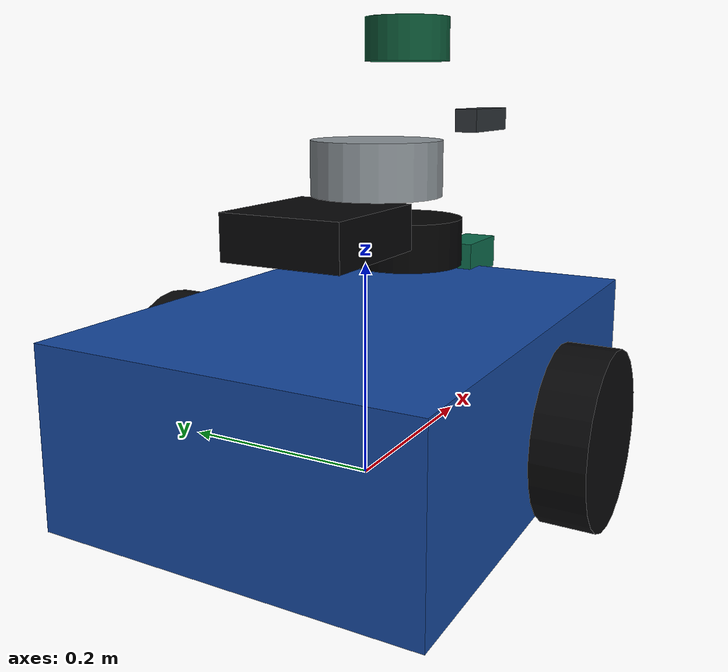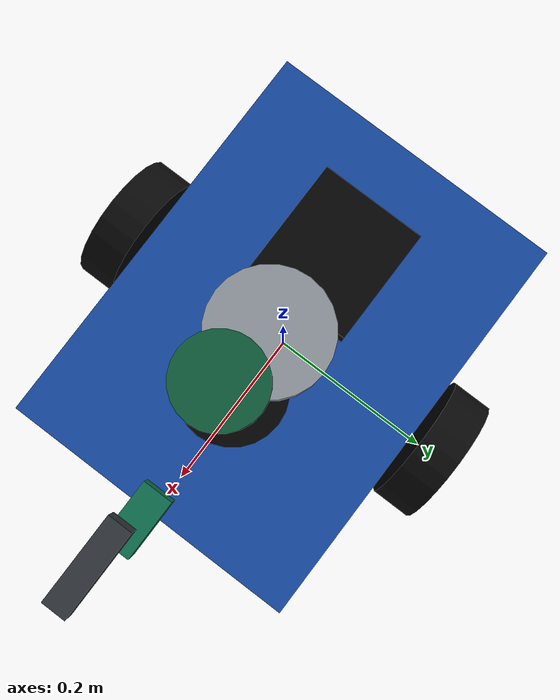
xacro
<?xml version="1.0"?>
<robot xmlns:xacro="http://www.ros.org/wiki/xacro" name="service_robot">
  <xacro:arg name="use_gazebo" default="true"/>

  <xacro:property name="base_length" value="0.46"/>
  <xacro:property name="base_width" value="0.34"/>
  <xacro:property name="base_height" value="0.16"/>
  <xacro:property name="wheel_radius" value="0.075"/>
  <xacro:property name="wheel_width" value="0.045"/>
  <xacro:property name="wheel_y" value="0.205"/>

  <link name="base_footprint"/>

  <joint name="base_footprint_joint" type="fixed">
    <parent link="base_footprint"/>
    <child link="base_link"/>
    <origin xyz="0 0 ${base_height / 2.0}" rpy="0 0 0"/>
  </joint>

  <link name="base_link">
    <visual>
      <origin xyz="0 0 0" rpy="0 0 0"/>
      <geometry>
        <box size="${base_length} ${base_width} ${base_height}"/>
      </geometry>
      <material name="service_blue">
        <color rgba="0.08 0.28 0.62 1.0"/>
      </material>
    </visual>
    <collision>
      <origin xyz="0 0 0" rpy="0 0 0"/>
      <geometry>
        <box size="${base_length} ${base_width} ${base_height}"/>
      </geometry>
    </collision>
    <inertial>
      <mass value="8.0"/>
      <origin xyz="0 0 0" rpy="0 0 0"/>
      <inertia ixx="0.09" ixy="0.0" ixz="0.0" iyy="0.16" iyz="0.0" izz="0.22"/>
    </inertial>
  </link>

  <link name="left_wheel_link">
    <visual>
      <origin xyz="0 0 0" rpy="1.57079632679 0 0"/>
      <geometry>
        <cylinder radius="${wheel_radius}" length="${wheel_width}"/>
      </geometry>
      <material name="wheel_dark">
        <color rgba="0.03 0.03 0.035 1.0"/>
      </material>
    </visual>
    <collision>
      <origin xyz="0 0 0" rpy="1.57079632679 0 0"/>
      <geometry>
        <cylinder radius="${wheel_radius}" length="${wheel_width}"/>
      </geometry>
    </collision>
    <inertial>
      <mass value="0.55"/>
      <origin xyz="0 0 0" rpy="0 0 0"/>
      <inertia ixx="0.001" ixy="0.0" ixz="0.0" iyy="0.001" iyz="0.0" izz="0.001"/>
    </inertial>
  </link>

  <joint name="left_wheel_joint" type="continuous">
    <parent link="base_link"/>
    <child link="left_wheel_link"/>
    <origin xyz="0 ${wheel_y} ${-base_height / 2.0 + wheel_radius}" rpy="0 0 0"/>
    <axis xyz="0 1 0"/>
  </joint>

  <link name="right_wheel_link">
    <visual>
      <origin xyz="0 0 0" rpy="1.57079632679 0 0"/>
      <geometry>
        <cylinder radius="${wheel_radius}" length="${wheel_width}"/>
      </geometry>
      <material name="wheel_dark"/>
    </visual>
    <collision>
      <origin xyz="0 0 0" rpy="1.57079632679 0 0"/>
      <geometry>
        <cylinder radius="${wheel_radius}" length="${wheel_width}"/>
      </geometry>
    </collision>
    <inertial>
      <mass value="0.55"/>
      <origin xyz="0 0 0" rpy="0 0 0"/>
      <inertia ixx="0.001" ixy="0.0" ixz="0.0" iyy="0.001" iyz="0.0" izz="0.001"/>
    </inertial>
  </link>

  <joint name="right_wheel_joint" type="continuous">
    <parent link="base_link"/>
    <child link="right_wheel_link"/>
    <origin xyz="0 ${-wheel_y} ${-base_height / 2.0 + wheel_radius}" rpy="0 0 0"/>
    <axis xyz="0 1 0"/>
  </joint>

  <link name="caster_link">
    <visual>
      <origin xyz="0 0 0" rpy="0 0 0"/>
      <geometry>
        <sphere radius="0.035"/>
      </geometry>
      <material name="caster_gray">
        <color rgba="0.45 0.48 0.52 1.0"/>
      </material>
    </visual>
    <collision>
      <origin xyz="0 0 0" rpy="0 0 0"/>
      <geometry>
        <sphere radius="0.035"/>
      </geometry>
    </collision>
    <inertial>
      <mass value="0.15"/>
      <origin xyz="0 0 0" rpy="0 0 0"/>
      <inertia ixx="0.0001" ixy="0.0" ixz="0.0" iyy="0.0001" iyz="0.0" izz="0.0001"/>
    </inertial>
  </link>

  <joint name="caster_joint" type="fixed">
    <parent link="base_link"/>
    <child link="caster_link"/>
    <origin xyz="-0.18 0 ${-base_height / 2.0 + 0.035}" rpy="0 0 0"/>
  </joint>

  <link name="laser_link">
    <visual>
      <origin xyz="0 0 0" rpy="0 0 0"/>
      <geometry>
        <cylinder radius="0.055" length="0.045"/>
      </geometry>
      <material name="sensor_black">
        <color rgba="0.01 0.01 0.012 1.0"/>
      </material>
    </visual>
    <collision>
      <origin xyz="0 0 0" rpy="0 0 0"/>
      <geometry>
        <cylinder radius="0.055" length="0.045"/>
      </geometry>
    </collision>
    <inertial>
      <mass value="0.2"/>
      <origin xyz="0 0 0" rpy="0 0 0"/>
      <inertia ixx="0.0002" ixy="0.0" ixz="0.0" iyy="0.0002" iyz="0.0" izz="0.0002"/>
    </inertial>
  </link>

  <joint name="laser_joint" type="fixed">
    <parent link="base_link"/>
    <child link="laser_link"/>
    <origin xyz="0.08 0 0.13" rpy="0 0 0"/>
  </joint>

  <link name="camera_link">
    <visual>
      <origin xyz="0 0 0" rpy="0 0 0"/>
      <geometry>
        <box size="0.07 0.035 0.035"/>
      </geometry>
      <material name="camera_green">
        <color rgba="0.05 0.42 0.30 1.0"/>
      </material>
    </visual>
    <collision>
      <origin xyz="0 0 0" rpy="0 0 0"/>
      <geometry>
        <box size="0.07 0.035 0.035"/>
      </geometry>
    </collision>
    <inertial>
      <mass value="0.12"/>
      <origin xyz="0 0 0" rpy="0 0 0"/>
      <inertia ixx="0.0001" ixy="0.0" ixz="0.0" iyy="0.0001" iyz="0.0" izz="0.0001"/>
    </inertial>
  </link>

  <joint name="camera_joint" type="fixed">
    <parent link="base_link"/>
    <child link="camera_link"/>
    <origin xyz="0.24 0 0.09" rpy="0 0 0"/>
  </joint>

  <link name="camera_optical_link"/>
  <joint name="camera_optical_joint" type="fixed">
    <parent link="camera_link"/>
    <child link="camera_optical_link"/>
    <origin xyz="0.04 0 0" rpy="-1.57079632679 0 -1.57079632679"/>
  </joint>

  <link name="d425i_link">
    <visual>
      <origin xyz="0 0 0" rpy="0 0 0"/>
      <geometry>
        <box size="0.09 0.025 0.025"/>
      </geometry>
      <material name="realsense_gray">
        <color rgba="0.18 0.20 0.22 1.0"/>
      </material>
    </visual>
    <collision>
      <origin xyz="0 0 0" rpy="0 0 0"/>
      <geometry>
        <box size="0.09 0.025 0.025"/>
      </geometry>
    </collision>
    <inertial>
      <mass value="0.08"/>
      <origin xyz="0 0 0" rpy="0 0 0"/>
      <inertia ixx="0.00005" ixy="0.0" ixz="0.0" iyy="0.00008" iyz="0.0" izz="0.00008"/>
    </inertial>
  </link>

  <joint name="d425i_joint" type="fixed">
    <parent link="base_link"/>
    <child link="d425i_link"/>
    <origin xyz="0.27 0 0.24" rpy="0 0 0"/>
  </joint>

  <link name="d425i_color_optical_frame"/>
  <joint name="d425i_color_optical_joint" type="fixed">
    <parent link="d425i_link"/>
    <child link="d425i_color_optical_frame"/>
    <origin xyz="0.045 0 0" rpy="-1.57079632679 0 -1.57079632679"/>
  </joint>

  <link name="mid360_link">
    <visual>
      <origin xyz="0 0 0" rpy="0 0 0"/>
      <geometry>
        <cylinder radius="0.04" length="0.04"/>
      </geometry>
      <material name="livox_green">
        <color rgba="0.05 0.35 0.22 1.0"/>
      </material>
    </visual>
    <collision>
      <origin xyz="0 0 0" rpy="0 0 0"/>
      <geometry>
        <cylinder radius="0.04" length="0.04"/>
      </geometry>
    </collision>
    <inertial>
      <mass value="0.27"/>
      <origin xyz="0 0 0" rpy="0 0 0"/>
      <inertia ixx="0.0002" ixy="0.0" ixz="0.0" iyy="0.0002" iyz="0.0" izz="0.0002"/>
    </inertial>
  </link>

  <joint name="mid360_joint" type="fixed">
    <parent link="base_link"/>
    <child link="mid360_link"/>
    <origin xyz="0.08 0 0.32" rpy="0 0 0"/>
  </joint>

  <link name="piper_base_link">
    <visual>
      <origin xyz="0 0 0.025" rpy="0 0 0"/>
      <geometry>
        <cylinder radius="0.06" length="0.05"/>
      </geometry>
      <material name="arm_base_silver">
        <color rgba="0.55 0.58 0.60 1.0"/>
      </material>
    </visual>
    <collision>
      <origin xyz="0 0 0.025" rpy="0 0 0"/>
      <geometry>
        <cylinder radius="0.06" length="0.05"/>
      </geometry>
    </collision>
    <inertial>
      <mass value="0.6"/>
      <origin xyz="0 0 0.025" rpy="0 0 0"/>
      <inertia ixx="0.001" ixy="0.0" ixz="0.0" iyy="0.001" iyz="0.0" izz="0.001"/>
    </inertial>
  </link>

  <joint name="piper_mount_joint" type="fixed">
    <parent link="base_link"/>
    <child link="piper_base_link"/>
    <origin xyz="0.02 0 0.18" rpy="0 0 0"/>
  </joint>

  <link name="nuc_ultra_link">
    <visual>
      <origin xyz="0 0 0" rpy="0 0 0"/>
      <geometry>
        <box size="0.12 0.11 0.04"/>
      </geometry>
      <material name="nuc_black">
        <color rgba="0.02 0.02 0.025 1.0"/>
      </material>
    </visual>
    <collision>
      <origin xyz="0 0 0" rpy="0 0 0"/>
      <geometry>
        <box size="0.12 0.11 0.04"/>
      </geometry>
    </collision>
    <inertial>
      <mass value="0.7"/>
      <origin xyz="0 0 0" rpy="0 0 0"/>
      <inertia ixx="0.001" ixy="0.0" ixz="0.0" iyy="0.001" iyz="0.0" izz="0.001"/>
    </inertial>
  </link>

  <joint name="nuc_ultra_joint" type="fixed">
    <parent link="base_link"/>
    <child link="nuc_ultra_link"/>
    <origin xyz="-0.08 0 0.16" rpy="0 0 0"/>
  </joint>

  <gazebo reference="base_link">
    <material>Gazebo/Blue</material>
  </gazebo>

  <gazebo reference="left_wheel_link">
    <material>Gazebo/Black</material>
  </gazebo>

  <gazebo reference="right_wheel_link">
    <material>Gazebo/Black</material>
  </gazebo>

  <xacro:if value="$(arg use_gazebo)">
    <gazebo>
      <plugin name="diff_drive_controller" filename="libgazebo_ros_diff_drive.so">
        <ros>
          <namespace>/</namespace>
          <remapping>cmd_vel:=cmd_vel</remapping>
          <remapping>odom:=odom</remapping>
        </ros>
        <left_joint>left_wheel_joint</left_joint>
        <right_joint>right_wheel_joint</right_joint>
        <wheel_separation>${2.0 * wheel_y}</wheel_separation>
        <wheel_diameter>${2.0 * wheel_radius}</wheel_diameter>
        <max_wheel_torque>12.0</max_wheel_torque>
        <max_wheel_acceleration>4.0</max_wheel_acceleration>
        <publish_odom>true</publish_odom>
        <publish_odom_tf>true</publish_odom_tf>
        <publish_wheel_tf>false</publish_wheel_tf>
        <odometry_frame>odom</odometry_frame>
        <robot_base_frame>base_footprint</robot_base_frame>
      </plugin>
    </gazebo>

    <gazebo reference="laser_link">
      <sensor name="service_robot_lidar" type="ray">
        <always_on>true</always_on>
        <update_rate>10</update_rate>
        <visualize>true</visualize>
        <ray>
          <scan>
            <horizontal>
              <samples>360</samples>
              <resolution>1</resolution>
              <min_angle>-3.14159</min_angle>
              <max_angle>3.14159</max_angle>
            </horizontal>
          </scan>
          <range>
            <min>0.12</min>
            <max>8.0</max>
            <resolution>0.01</resolution>
          </range>
        </ray>
        <plugin name="service_robot_laser" filename="libgazebo_ros_ray_sensor.so">
          <ros>
            <namespace>/</namespace>
            <remapping>~/out:=scan</remapping>
          </ros>
          <output_type>sensor_msgs/LaserScan</output_type>
          <frame_name>laser_link</frame_name>
        </plugin>
      </sensor>
    </gazebo>

    <gazebo reference="camera_link">
      <sensor name="service_robot_camera" type="camera">
        <always_on>true</always_on>
        <update_rate>15</update_rate>
        <camera>
          <horizontal_fov>1.047</horizontal_fov>
          <image>
            <width>640</width>
            <height>480</height>
            <format>R8G8B8</format>
          </image>
          <clip>
            <near>0.05</near>
            <far>10.0</far>
          </clip>
        </camera>
        <plugin name="service_robot_camera_controller" filename="libgazebo_ros_camera.so">
          <ros>
            <namespace>/</namespace>
            <remapping>image_raw:=camera/image_raw</remapping>
            <remapping>camera_info:=camera/camera_info</remapping>
          </ros>
          <camera_name>camera</camera_name>
          <frame_name>camera_optical_link</frame_name>
        </plugin>
      </sensor>
    </gazebo>

    <gazebo reference="mid360_link">
      <sensor name="sim_mid360_pointcloud" type="ray">
        <always_on>true</always_on>
        <update_rate>10</update_rate>
        <visualize>false</visualize>
        <ray>
          <scan>
            <horizontal>
              <samples>240</samples>
              <resolution>1</resolution>
              <min_angle>-3.14159</min_angle>
              <max_angle>3.14159</max_angle>
            </horizontal>
            <vertical>
              <samples>16</samples>
              <resolution>1</resolution>
              <min_angle>-0.26</min_angle>
              <max_angle>0.26</max_angle>
            </vertical>
          </scan>
          <range>
            <min>0.2</min>
            <max>20.0</max>
            <resolution>0.02</resolution>
          </range>
        </ray>
        <plugin name="sim_mid360_pointcloud_plugin" filename="libgazebo_ros_ray_sensor.so">
          <ros>
            <namespace>/</namespace>
            <remapping>~/out:=livox/lidar</remapping>
          </ros>
          <output_type>sensor_msgs/PointCloud2</output_type>
          <frame_name>mid360_link</frame_name>
        </plugin>
      </sensor>
    </gazebo>

    <gazebo reference="mid360_link">
      <sensor name="sim_mid360_imu" type="imu">
        <always_on>true</always_on>
        <update_rate>100</update_rate>
        <imu>
          <angular_velocity>
            <x>
              <noise type="gaussian">
                <mean>0.0</mean>
                <stddev>0.0002</stddev>
              </noise>
            </x>
            <y>
              <noise type="gaussian">
                <mean>0.0</mean>
                <stddev>0.0002</stddev>
              </noise>
            </y>
            <z>
              <noise type="gaussian">
                <mean>0.0</mean>
                <stddev>0.0002</stddev>
              </noise>
            </z>
          </angular_velocity>
          <linear_acceleration>
            <x>
              <noise type="gaussian">
                <mean>0.0</mean>
                <stddev>0.01</stddev>
              </noise>
            </x>
            <y>
              <noise type="gaussian">
                <mean>0.0</mean>
                <stddev>0.01</stddev>
              </noise>
            </y>
            <z>
              <noise type="gaussian">
                <mean>0.0</mean>
                <stddev>0.01</stddev>
              </noise>
            </z>
          </linear_acceleration>
        </imu>
        <plugin name="sim_mid360_imu_plugin" filename="libgazebo_ros_imu_sensor.so">
          <ros>
            <namespace>/</namespace>
            <remapping>~/out:=livox/imu</remapping>
          </ros>
          <frame_name>mid360_link</frame_name>
        </plugin>
      </sensor>
    </gazebo>
  </xacro:if>
</robot>
